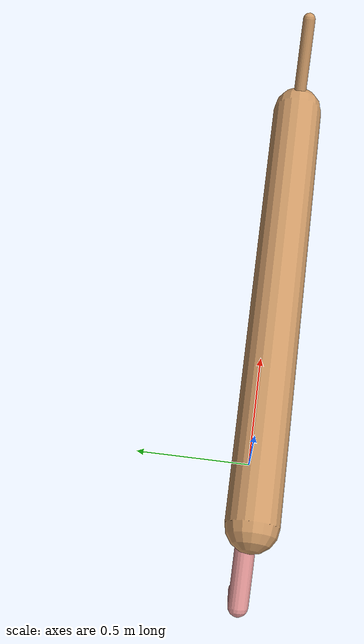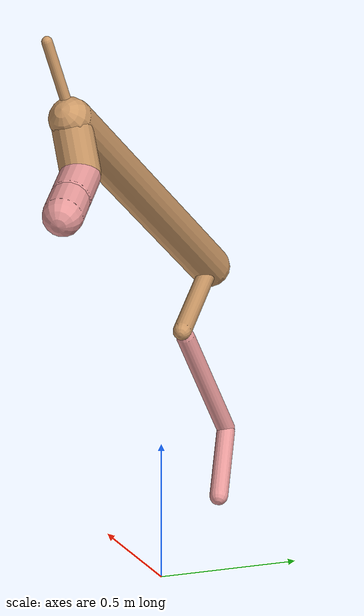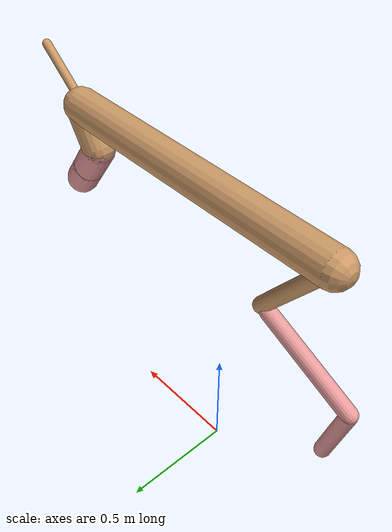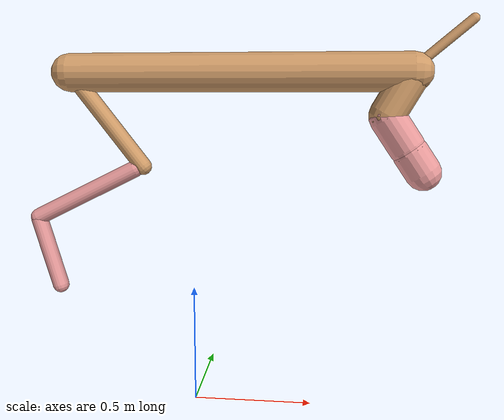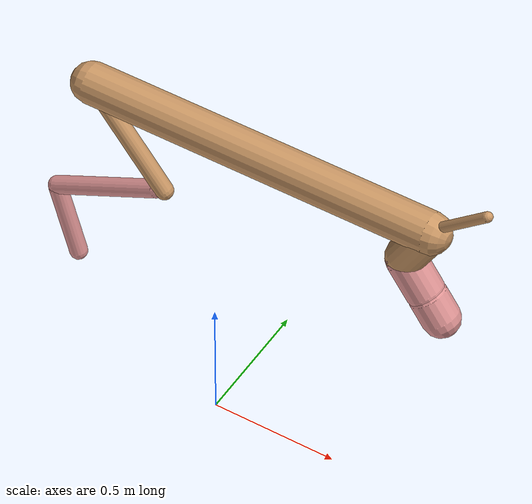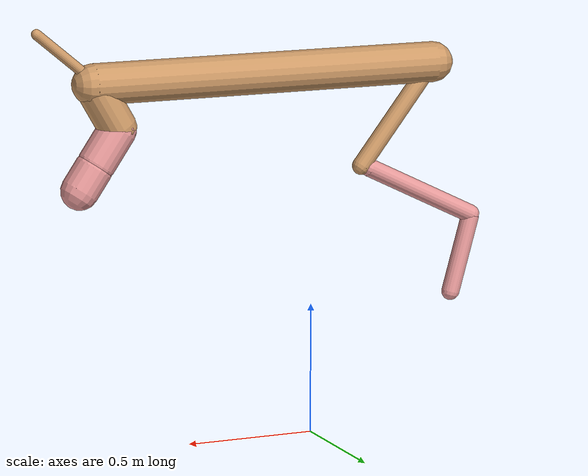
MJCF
<mujoco model="cheetah">
  <compiler angle="radian" coordinate="local" inertiafromgeom="true" settotalmass="14" />
  <default>
    <joint armature=".1" damping=".01" limited="true" solimplimit="0 .8 .03" solreflimit=".02 1" stiffness="8" />
    <geom conaffinity="0" condim="3" contype="1" friction="0.8 .1 .1" rgba="0.8 0.6 .4 1" solimp="0.0 0.8 0.01" solref="0.02 1" />
    <motor ctrllimited="true" ctrlrange="-1 1" />
  </default>
  <size nstack="300000" nuser_geom="1" />
  <option gravity="0 0 -9.81" timestep="0.01" />
  <worldbody>
    <body name="torso" pos="0.0 0.0 1.3980923481676542">
      <joint armature="0" axis="1 0 0" damping="0" limited="false" name="ignorex" pos="0 0 0" stiffness="0" type="slide" />
      <joint armature="0" axis="0 0 1" damping="0" limited="false" name="ignorez" pos="0 0 0" stiffness="0" type="slide" />
      <joint armature="0" axis="0 1 0" damping="0" limited="false" name="ignorey" pos="0 0 0" stiffness="0" type="hinge" />
      <geom fromto="-0.5 0.0 0.0 0.8731623203379548 0.0 0.0" name="torso" size="0.07793974578579528" type="capsule" />
      <geom axisangle="0 1 0 .87" name="head" pos="0.9731623203379548 0.0 0.1" size="0.01954419518609637 0.15" type="capsule" />

      <body name="bthigh" pos="-.5 0 0">
        <joint axis="0 1 0" damping="6" name="bthigh" pos="0 0 0" range="-.52 1.05" stiffness="240" type="hinge" />
        <geom axisangle="0 1 0 -3.8" name="bthigh" pos="0.152302534260995 0.0 -0.19799329453929349" size="0.0347036391085322 0.23078253430873716" type="capsule" />
        <body name="bshin" pos="0.26460506852198995 0.0 -0.38598658907858696">
          <joint axis="0 1 0" damping="4.5" name="bshin" pos="0 0 0" range="-.785 .785" stiffness="180" type="hinge" />
          <geom axisangle="0 1 0 -2.03" name="bshin" pos="-0.2193719633089149 0.0 -0.10968598165445745" rgba="0.9 0.6 0.6 1" size="0.0347036391085322 0.23874055273317638" type="capsule" />
          <body name="bfoot" pos="-0.4387439266178298 0.0 -0.2193719633089149">
            <joint axis="0 1 0" damping="3" name="bfoot" pos="0 0 0" range="-.4 .785" stiffness="120" type="hinge" />
            <geom axisangle="0 1 0 -.27" name="bfoot" pos="0.04643129182422759 0.0 -0.15012784356500256" rgba="0.9 0.6 0.6 1" size="0.0347036391085322 0.1496107463794572" type="capsule" />
            <inertial mass="10" />
          </body>
        </body>
      </body>
      <body name="fthigh" pos="0.8731623203379548 0.0 0.0">
        <joint axis="0 1 0" damping="4.5" name="fthigh" pos="0 0 0" range="-1.5 0.8" stiffness="180" type="hinge" />
        <geom axisangle="0 1 0 .52" name="fthigh" pos="-0.04989554608158897 0.0 -0.0855352218541525" size="0.07206351837486488 0.0931" type="capsule" />
        <body name="fshin" pos="-0.09979109216317794 0.0 -0.171070443708305">
          <joint axis="0 1 0" damping="3" name="fshin" pos="0 0 0" range="-1.2 1.1" stiffness="120" type="hinge" />
          <geom axisangle="0 1 0 -.6" name="fshin" pos="0.046381400387749405 0.0 -0.06422040053688378" rgba="0.9 0.6 0.6 1" size="0.07206351837486488 0.07419999999999999" type="capsule" />
          <body name="ffoot" pos="0.09276280077549881 0.0 -0.12844080107376757">
            <joint axis="0 1 0" damping="1.5" name="ffoot" pos="0 0 0" range="-3.1 -0.3" stiffness="60" type="hinge" />
            <geom axisangle="0 1 0 -.6" name="ffoot" pos="0.033644090582416526 0.0 -0.05233525201709238" rgba="0.9 0.6 0.6 1" size="0.07206351837486488 0.049" type="capsule" />
            <inertial mass="10" />
          </body>
        </body>
      </body>
    </body>
  </worldbody>
  <actuator>
    <motor gear="120" joint="bthigh" name="bthigh" />
    <motor gear="90" joint="bshin" name="bshin" />
    <motor gear="60" joint="bfoot" name="bfoot" />
    <motor gear="120" joint="fthigh" name="fthigh" />
    <motor gear="60" joint="fshin" name="fshin" />
    <motor gear="30" joint="ffoot" name="ffoot" />
  </actuator>
</mujoco>
